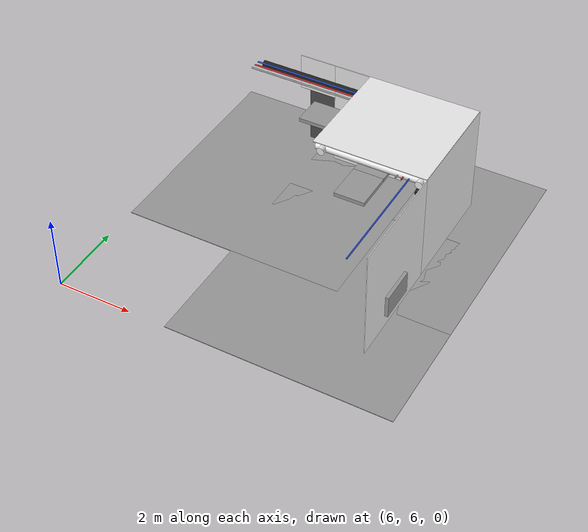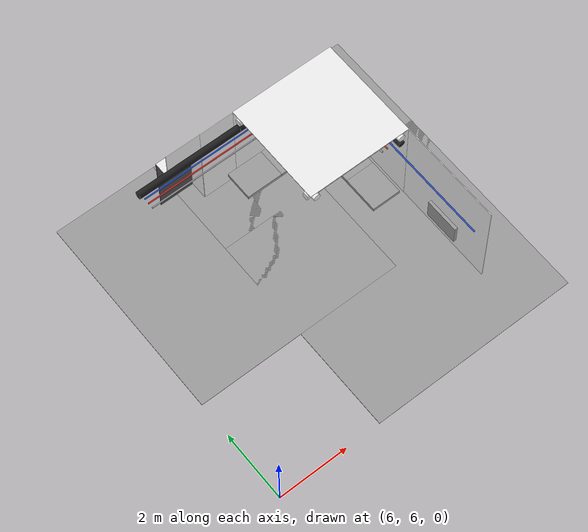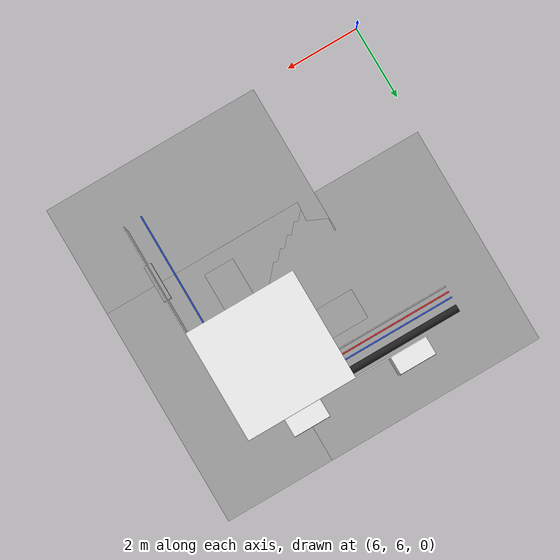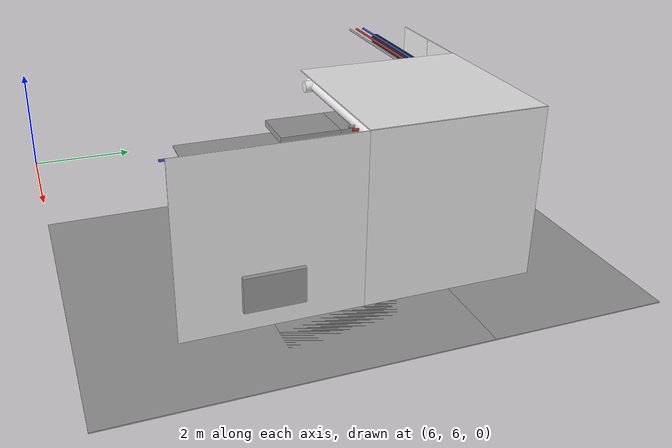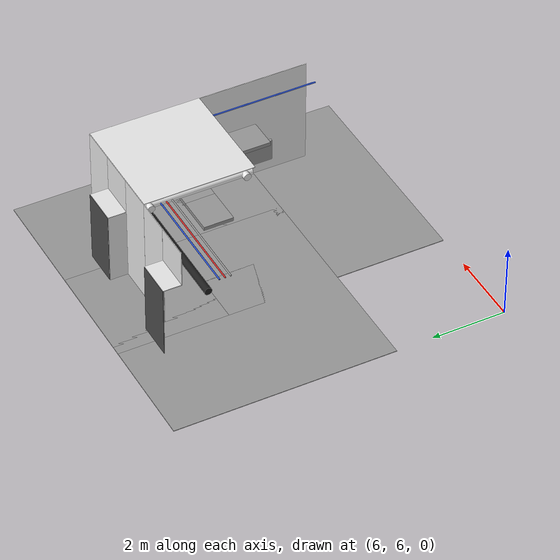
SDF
<sdf version="1.6">
 <world name="default">
  <model name="wall_right_4_3_0_1">
   <static>1</static>
   <pose>13.5 9.0 1.5 0.0 0.0 1.57</pose>
   <link name="link">
    <collision name="collision"><geometry><box><size>3.0 0.02 3.0</size></box></geometry></collision>
    <visual name="visual">
     <material>
      <script><name>Gazebo/White</name><uri>file://media/materials/scripts/gazebo.material</uri></script>
     </material>
     <geometry><box><size>3.0 0.02 3.0</size></box></geometry>
    </visual>
   </link>
  </model>
  <model name="ceiling_1_4_3_2_1">
   <pose>12.0 10.0 2.55 0.0 0.0 0.0</pose>
   <link name="link_1">
    <visual name="visual">
     <geometry><box><size>0.8 1 0.1</size></box></geometry>
     <material>
      <script><uri>file://media/materials/scripts/gazebo.material</uri><name>Gazebo/Grey</name></script>
     </material>
    </visual>
    <collision name="collision"><geometry><box><size>0.8 1 0.1</size></box></geometry></collision>
   </link>
   <static>1</static>
  </model>
  <model name="blue_pipe_right_4_3_0_1">
   <static>1</static>
   <pose>12.0 9.0 2.76 0.0 0.0 0.0</pose>
   <link name="link_0">
    <visual name="visual">
     <pose>1 0 0 1.57 0 0</pose>
     <geometry><cylinder><radius>0.02</radius><length>3.0</length></cylinder></geometry>
     <material>
      <script><uri>file://media/materials/scripts/gazebo.material</uri><name>Gazebo/Blue</name></script>
     </material>
    </visual>
    <collision name="collision">
     <pose>1 0 0 1.57 0 0</pose>
     <geometry><cylinder><radius>0.02</radius><length>3.0</length></cylinder></geometry>
    </collision>
   </link>
  </model>
  <model name="wall_bottom_4_3_0_1">
   <static>1</static>
   <pose>12.0 9.0 0.0 0.0 0.0 0.0</pose>
   <link name="link">
    <collision name="collision"><geometry><box><size>6.0 6.0 0.02</size></box></geometry></collision>
    <visual name="visual">
     <material>
      <script><name>Gazebo/Grey</name><uri>file://media/materials/scripts/gazebo.material</uri></script>
     </material>
     <geometry><box><size>6.0 6.0 0.02</size></box></geometry>
    </visual>
   </link>
  </model>
  <model name="panel_4_3_0_1">
   <static>1</static>
   <pose>13.5 9.0 0.66 0.0 0.0 0.0</pose>
   <link name="link">
    <collision name="collision"><geometry><box><size>0.2 1 0.6</size></box></geometry></collision>
    <visual name="visual">
     <material>
      <script><name>Gazebo/Grey</name><uri>file://media/materials/scripts/gazebo.material</uri></script>
     </material>
     <geometry><box><size>0.2 1 0.6</size></box></geometry>
    </visual>
   </link>
  </model>
  <model name="wall_right_4_4_0_3">
   <static>1</static>
   <pose>13.5 12.0 1.5 0.0 0.0 1.57</pose>
   <link name="link">
    <collision name="collision"><geometry><box><size>3.0 0.02 3.0</size></box></geometry></collision>
    <visual name="visual">
     <material>
      <script><name>Gazebo/White</name><uri>file://media/materials/scripts/gazebo.material</uri></script>
     </material>
     <geometry><box><size>3.0 0.02 3.0</size></box></geometry>
    </visual>
   </link>
  </model>
  <model name="wall_top_4_4_0_3">
   <static>1</static>
   <pose>12.0 12.0 3.0 1.57 0.0 0.0</pose>
   <link name="link">
    <collision name="collision"><geometry><box><size>3.0 0.02 3.0</size></box></geometry></collision>
    <visual name="visual">
     <material>
      <script><name>Gazebo/White</name><uri>file://media/materials/scripts/gazebo.material</uri></script>
     </material>
     <geometry><box><size>3.0 0.02 3.0</size></box></geometry>
    </visual>
   </link>
  </model>
  <model name="ceiling_1_4_4_0_3">
   <pose>12.0 11.0 2.55 0.0 0.0 0.0</pose>
   <link name="link_1">
    <visual name="visual">
     <geometry><box><size>0.8 1 0.1</size></box></geometry>
     <material>
      <script><uri>file://media/materials/scripts/gazebo.material</uri><name>Gazebo/Grey</name></script>
     </material>
    </visual>
    <collision name="collision"><geometry><box><size>0.8 1 0.1</size></box></geometry></collision>
   </link>
   <static>1</static>
  </model>
  <model name="ceiling_1_4_4_1_3">
   <pose>11.0 12.0 2.55 0.0 0.0 1.57</pose>
   <link name="link_1">
    <visual name="visual">
     <geometry><box><size>0.8 1 0.1</size></box></geometry>
     <material>
      <script><uri>file://media/materials/scripts/gazebo.material</uri><name>Gazebo/Grey</name></script>
     </material>
    </visual>
    <collision name="collision"><geometry><box><size>0.8 1 0.1</size></box></geometry></collision>
   </link>
   <static>1</static>
  </model>
  <model name="white_pipe_left_4_4_0_3">
   <static>1</static>
   <pose>12.0 12.0 2.76 0.0 0.0 0.0</pose>
   <link name="link_0">
    <visual name="visual">
     <pose>-1.3 0 0 1.57 0 0</pose>
     <geometry><cylinder><radius>0.1</radius><length>3.0</length></cylinder></geometry>
     <material>
      <script><uri>file://media/materials/scripts/gazebo.material</uri><name>Gazebo/White</name></script>
     </material>
    </visual>
    <collision name="collision">
     <pose>-1.3 0 0 1.57 0 0</pose>
     <geometry><cylinder><radius>0.1</radius><length>3.0</length></cylinder></geometry>
    </collision>
   </link>
  </model>
  <model name="white_pipe_right_4_4_0_3">
   <static>1</static>
   <pose>12.0 12.0 2.76 0.0 0.0 0.0</pose>
   <link name="link_0">
    <visual name="visual">
     <pose>1.3 0 0 1.57 0 0</pose>
     <geometry><cylinder><radius>0.1</radius><length>3.0</length></cylinder></geometry>
     <material>
      <script><uri>file://media/materials/scripts/gazebo.material</uri><name>Gazebo/White</name></script>
     </material>
    </visual>
    <collision name="collision">
     <pose>1.3 0 0 1.57 0 0</pose>
     <geometry><cylinder><radius>0.1</radius><length>3.0</length></cylinder></geometry>
    </collision>
   </link>
  </model>
  <model name="black_pipe_right_4_4_0_3">
   <static>1</static>
   <pose>12.0 12.0 2.76 0.0 0.0 0.0</pose>
   <link name="link_0">
    <visual name="visual">
     <pose>1.3 0 -0.25 1.57 0 0</pose>
     <geometry><cylinder><radius>0.1</radius><length>3.0</length></cylinder></geometry>
     <material>
      <script><uri>file://media/materials/scripts/gazebo.material</uri><name>Gazebo/Black</name></script>
     </material>
    </visual>
    <collision name="collision">
     <pose>1.3 0 -0.25 1.57 0 0</pose>
     <geometry><cylinder><radius>0.1</radius><length>3.0</length></cylinder></geometry>
    </collision>
   </link>
  </model>
  <model name="grey_pipe_right_4_4_0_3">
   <static>1</static>
   <pose>12.0 12.0 2.76 0.0 0.0 0.0</pose>
   <link name="link_0">
    <visual name="visual">
     <pose>0.7 0 0 1.57 0 0</pose>
     <geometry><cylinder><radius>0.02</radius><length>3.0</length></cylinder></geometry>
     <material>
      <script><uri>file://media/materials/scripts/gazebo.material</uri><name>Gazebo/Grey</name></script>
     </material>
    </visual>
    <collision name="collision">
     <pose>0.7 0 0 1.57 0 0</pose>
     <geometry><cylinder><radius>0.02</radius><length>3.0</length></cylinder></geometry>
    </collision>
   </link>
  </model>
  <model name="red_pipe_right_4_4_0_3">
   <static>1</static>
   <pose>12.0 12.0 2.76 0.0 0.0 0.0</pose>
   <link name="link_0">
    <visual name="visual">
     <pose>0.85 0 0 1.57 0 0</pose>
     <geometry><cylinder><radius>0.02</radius><length>3.0</length></cylinder></geometry>
     <material>
      <script><uri>file://media/materials/scripts/gazebo.material</uri><name>Gazebo/Red</name></script>
     </material>
    </visual>
    <collision name="collision">
     <pose>0.85 0 0 1.57 0 0</pose>
     <geometry><cylinder><radius>0.02</radius><length>3.0</length></cylinder></geometry>
    </collision>
   </link>
  </model>
  <model name="blue_pipe_right_4_4_0_3">
   <static>1</static>
   <pose>12.0 12.0 2.76 0.0 0.0 0.0</pose>
   <link name="link_0">
    <visual name="visual">
     <pose>1 0 0 1.57 0 0</pose>
     <geometry><cylinder><radius>0.02</radius><length>3.0</length></cylinder></geometry>
     <material>
      <script><uri>file://media/materials/scripts/gazebo.material</uri><name>Gazebo/Blue</name></script>
     </material>
    </visual>
    <collision name="collision">
     <pose>1 0 0 1.57 0 0</pose>
     <geometry><cylinder><radius>0.02</radius><length>3.0</length></cylinder></geometry>
    </collision>
   </link>
  </model>
  <model name="white_pipe_left_1_4_4_0_3">
   <static>1</static>
   <pose>12.0 12.0 2.76 0.0 0.0 1.57</pose>
   <link name="link_0">
    <visual name="visual">
     <pose>-1.3 0 0 1.57 0 0</pose>
     <geometry><cylinder><radius>0.1</radius><length>3.0</length></cylinder></geometry>
     <material>
      <script><uri>file://media/materials/scripts/gazebo.material</uri><name>Gazebo/White</name></script>
     </material>
    </visual>
    <collision name="collision">
     <pose>-1.3 0 0 1.57 0 0</pose>
     <geometry><cylinder><radius>0.1</radius><length>3.0</length></cylinder></geometry>
    </collision>
   </link>
  </model>
  <model name="white_pipe_right_1_4_4_0_3">
   <static>1</static>
   <pose>12.0 12.0 2.76 0.0 0.0 1.57</pose>
   <link name="link_0">
    <visual name="visual">
     <pose>1.3 0 0 1.57 0 0</pose>
     <geometry><cylinder><radius>0.1</radius><length>3.0</length></cylinder></geometry>
     <material>
      <script><uri>file://media/materials/scripts/gazebo.material</uri><name>Gazebo/White</name></script>
     </material>
    </visual>
    <collision name="collision">
     <pose>1.3 0 0 1.57 0 0</pose>
     <geometry><cylinder><radius>0.1</radius><length>3.0</length></cylinder></geometry>
    </collision>
   </link>
  </model>
  <model name="black_pipe_right_1_4_4_0_3">
   <static>1</static>
   <pose>12.0 12.0 2.76 0.0 0.0 1.57</pose>
   <link name="link_0">
    <visual name="visual">
     <pose>1.3 0 -0.25 1.57 0 0</pose>
     <geometry><cylinder><radius>0.1</radius><length>3.0</length></cylinder></geometry>
     <material>
      <script><uri>file://media/materials/scripts/gazebo.material</uri><name>Gazebo/Black</name></script>
     </material>
    </visual>
    <collision name="collision">
     <pose>1.3 0 -0.25 1.57 0 0</pose>
     <geometry><cylinder><radius>0.1</radius><length>3.0</length></cylinder></geometry>
    </collision>
   </link>
  </model>
  <model name="grey_pipe_right_1_4_4_0_3">
   <static>1</static>
   <pose>12.0 12.0 2.76 0.0 0.0 1.57</pose>
   <link name="link_0">
    <visual name="visual">
     <pose>0.7 0 0 1.57 0 0</pose>
     <geometry><cylinder><radius>0.02</radius><length>3.0</length></cylinder></geometry>
     <material>
      <script><uri>file://media/materials/scripts/gazebo.material</uri><name>Gazebo/Grey</name></script>
     </material>
    </visual>
    <collision name="collision">
     <pose>0.7 0 0 1.57 0 0</pose>
     <geometry><cylinder><radius>0.02</radius><length>3.0</length></cylinder></geometry>
    </collision>
   </link>
  </model>
  <model name="red_pipe_right_1_4_4_0_3">
   <static>1</static>
   <pose>12.0 12.0 2.76 0.0 0.0 1.57</pose>
   <link name="link_0">
    <visual name="visual">
     <pose>0.85 0 0 1.57 0 0</pose>
     <geometry><cylinder><radius>0.02</radius><length>3.0</length></cylinder></geometry>
     <material>
      <script><uri>file://media/materials/scripts/gazebo.material</uri><name>Gazebo/Red</name></script>
     </material>
    </visual>
    <collision name="collision">
     <pose>0.85 0 0 1.57 0 0</pose>
     <geometry><cylinder><radius>0.02</radius><length>3.0</length></cylinder></geometry>
    </collision>
   </link>
  </model>
  <model name="blue_pipe_right_1_4_4_0_3">
   <static>1</static>
   <pose>12.0 12.0 2.76 0.0 0.0 1.57</pose>
   <link name="link_0">
    <visual name="visual">
     <pose>1 0 0 1.57 0 0</pose>
     <geometry><cylinder><radius>0.02</radius><length>3.0</length></cylinder></geometry>
     <material>
      <script><uri>file://media/materials/scripts/gazebo.material</uri><name>Gazebo/Blue</name></script>
     </material>
    </visual>
    <collision name="collision">
     <pose>1 0 0 1.57 0 0</pose>
     <geometry><cylinder><radius>0.02</radius><length>3.0</length></cylinder></geometry>
    </collision>
   </link>
  </model>
  <model name="wall_front_front_left_4_4_0_3">
   <static>1</static>
   <pose>13.0 13.5 1.5 0.0 0.0 0.0</pose>
   <link name="link">
    <collision name="collision"><geometry><box><size>1.0 0.02 3.0</size></box></geometry></collision>
    <visual name="visual">
     <material>
      <script><name>Gazebo/White</name><uri>file://media/materials/scripts/gazebo.material</uri></script>
     </material>
     <geometry><box><size>1.0 0.02 3.0</size></box></geometry>
    </visual>
   </link>
  </model>
  <model name="wall_front_front_right_4_4_0_3">
   <static>1</static>
   <pose>11.0 13.5 1.5 0.0 0.0 0.0</pose>
   <link name="link">
    <collision name="collision"><geometry><box><size>1.0 0.02 3.0</size></box></geometry></collision>
    <visual name="visual">
     <material>
      <script><name>Gazebo/White</name><uri>file://media/materials/scripts/gazebo.material</uri></script>
     </material>
     <geometry><box><size>1.0 0.02 3.0</size></box></geometry>
    </visual>
   </link>
  </model>
  <model name="wall_front_front_up_4_4_0_3">
   <static>1</static>
   <pose>12.0 13.5 2.5 0.0 0.0 0.0</pose>
   <link name="link">
    <collision name="collision"><geometry><box><size>1.0 0.02 1.0</size></box></geometry></collision>
    <visual name="visual">
     <material>
      <script><name>Gazebo/White</name><uri>file://media/materials/scripts/gazebo.material</uri></script>
     </material>
     <geometry><box><size>1.0 0.02 1.0</size></box></geometry>
    </visual>
   </link>
  </model>
  <model name="wall_front_inside_back_4_4_0_3">
   <static>1</static>
   <pose>12.0 14.0 1.0 0.0 0.0 0.0</pose>
   <link name="link">
    <collision name="collision"><geometry><box><size>1 0.02 2</size></box></geometry></collision>
    <visual name="visual">
     <material>
      <script><name>Gazebo/DarkGrey</name><uri>file://media/materials/scripts/gazebo.material</uri></script>
     </material>
     <geometry><box><size>1 0.02 2</size></box></geometry>
    </visual>
   </link>
  </model>
  <model name="wall_front_inside_left_4_4_0_3">
   <static>1</static>
   <pose>11.5 13.75 1.0 0.0 0.0 1.57</pose>
   <link name="link">
    <collision name="collision"><geometry><box><size>0.5 0.02 2</size></box></geometry></collision>
    <visual name="visual">
     <material>
      <script><name>Gazebo/White</name><uri>file://media/materials/scripts/gazebo.material</uri></script>
     </material>
     <geometry><box><size>0.5 0.02 2</size></box></geometry>
    </visual>
   </link>
  </model>
  <model name="wall_front_inside_right_4_4_0_3">
   <static>1</static>
   <pose>12.5 13.75 1.0 0.0 0.0 1.57</pose>
   <link name="link">
    <collision name="collision"><geometry><box><size>0.5 0.02 2</size></box></geometry></collision>
    <visual name="visual">
     <material>
      <script><name>Gazebo/White</name><uri>file://media/materials/scripts/gazebo.material</uri></script>
     </material>
     <geometry><box><size>0.5 0.02 2</size></box></geometry>
    </visual>
   </link>
  </model>
  <model name="wall_front_inside_top_4_4_0_3">
   <static>1</static>
   <pose>12.0 13.75 2.0 1.57 0.0 0.0</pose>
   <link name="link">
    <collision name="collision"><geometry><box><size>1 0.02 0.5</size></box></geometry></collision>
    <visual name="visual">
     <material>
      <script><name>Gazebo/White</name><uri>file://media/materials/scripts/gazebo.material</uri></script>
     </material>
     <geometry><box><size>1 0.02 0.5</size></box></geometry>
    </visual>
   </link>
  </model>
  <model name="wall_bottom_4_4_0_3">
   <static>1</static>
   <pose>12.0 12.0 0.0 0.0 0.0 0.0</pose>
   <link name="link">
    <collision name="collision"><geometry><box><size>6.0 6.0 0.02</size></box></geometry></collision>
    <visual name="visual">
     <material>
      <script><name>Gazebo/Grey</name><uri>file://media/materials/scripts/gazebo.material</uri></script>
     </material>
     <geometry><box><size>6.0 6.0 0.02</size></box></geometry>
    </visual>
   </link>
  </model>
  <model name="ceiling_1_3_4_1_1">
   <pose>10.0 12.0 2.55 0.0 0.0 1.57</pose>
   <link name="link_1">
    <visual name="visual">
     <geometry><box><size>0.8 1 0.1</size></box></geometry>
     <material>
      <script><uri>file://media/materials/scripts/gazebo.material</uri><name>Gazebo/Grey</name></script>
     </material>
    </visual>
    <collision name="collision"><geometry><box><size>0.8 1 0.1</size></box></geometry></collision>
   </link>
   <static>1</static>
  </model>
  <model name="black_pipe_right_3_4_0_1">
   <static>1</static>
   <pose>9.0 12.0 2.76 0.0 0.0 1.57</pose>
   <link name="link_0">
    <visual name="visual">
     <pose>1.3 0 -0.25 1.57 0 0</pose>
     <geometry><cylinder><radius>0.1</radius><length>3.0</length></cylinder></geometry>
     <material>
      <script><uri>file://media/materials/scripts/gazebo.material</uri><name>Gazebo/Black</name></script>
     </material>
    </visual>
    <collision name="collision">
     <pose>1.3 0 -0.25 1.57 0 0</pose>
     <geometry><cylinder><radius>0.1</radius><length>3.0</length></cylinder></geometry>
    </collision>
   </link>
  </model>
  <model name="grey_pipe_right_3_4_0_1">
   <static>1</static>
   <pose>9.0 12.0 2.76 0.0 0.0 1.57</pose>
   <link name="link_0">
    <visual name="visual">
     <pose>0.7 0 0 1.57 0 0</pose>
     <geometry><cylinder><radius>0.02</radius><length>3.0</length></cylinder></geometry>
     <material>
      <script><uri>file://media/materials/scripts/gazebo.material</uri><name>Gazebo/Grey</name></script>
     </material>
    </visual>
    <collision name="collision">
     <pose>0.7 0 0 1.57 0 0</pose>
     <geometry><cylinder><radius>0.02</radius><length>3.0</length></cylinder></geometry>
    </collision>
   </link>
  </model>
  <model name="red_pipe_right_3_4_0_1">
   <static>1</static>
   <pose>9.0 12.0 2.76 0.0 0.0 1.57</pose>
   <link name="link_0">
    <visual name="visual">
     <pose>0.85 0 0 1.57 0 0</pose>
     <geometry><cylinder><radius>0.02</radius><length>3.0</length></cylinder></geometry>
     <material>
      <script><uri>file://media/materials/scripts/gazebo.material</uri><name>Gazebo/Red</name></script>
     </material>
    </visual>
    <collision name="collision">
     <pose>0.85 0 0 1.57 0 0</pose>
     <geometry><cylinder><radius>0.02</radius><length>3.0</length></cylinder></geometry>
    </collision>
   </link>
  </model>
  <model name="blue_pipe_right_3_4_0_1">
   <static>1</static>
   <pose>9.0 12.0 2.76 0.0 0.0 1.57</pose>
   <link name="link_0">
    <visual name="visual">
     <pose>1 0 0 1.57 0 0</pose>
     <geometry><cylinder><radius>0.02</radius><length>3.0</length></cylinder></geometry>
     <material>
      <script><uri>file://media/materials/scripts/gazebo.material</uri><name>Gazebo/Blue</name></script>
     </material>
    </visual>
    <collision name="collision">
     <pose>1 0 0 1.57 0 0</pose>
     <geometry><cylinder><radius>0.02</radius><length>3.0</length></cylinder></geometry>
    </collision>
   </link>
  </model>
  <model name="wall_right_front_right_3_4_0_1">
   <static>1</static>
   <pose>10.0 13.5 1.5 0.0 0.0 3.14</pose>
   <link name="link">
    <collision name="collision"><geometry><box><size>1.0 0.02 3.0</size></box></geometry></collision>
    <visual name="visual">
     <material>
      <script><name>Gazebo/White</name><uri>file://media/materials/scripts/gazebo.material</uri></script>
     </material>
     <geometry><box><size>1.0 0.02 3.0</size></box></geometry>
    </visual>
   </link>
  </model>
  <model name="wall_right_front_up_3_4_0_1">
   <static>1</static>
   <pose>9.0 13.5 2.5 0.0 0.0 3.14</pose>
   <link name="link">
    <collision name="collision"><geometry><box><size>1.0 0.02 1.0</size></box></geometry></collision>
    <visual name="visual">
     <material>
      <script><name>Gazebo/White</name><uri>file://media/materials/scripts/gazebo.material</uri></script>
     </material>
     <geometry><box><size>1.0 0.02 1.0</size></box></geometry>
    </visual>
   </link>
  </model>
  <model name="wall_right_inside_back_3_4_0_1">
   <static>1</static>
   <pose>9.0 14.0 1.0 0.0 0.0 3.14</pose>
   <link name="link">
    <collision name="collision"><geometry><box><size>1 0.02 2</size></box></geometry></collision>
    <visual name="visual">
     <material>
      <script><name>Gazebo/DarkGrey</name><uri>file://media/materials/scripts/gazebo.material</uri></script>
     </material>
     <geometry><box><size>1 0.02 2</size></box></geometry>
    </visual>
   </link>
  </model>
  <model name="wall_right_inside_right_3_4_0_1">
   <static>1</static>
   <pose>9.5 13.75 1.0 0.0 0.0 1.57</pose>
   <link name="link">
    <collision name="collision"><geometry><box><size>0.5 0.02 2</size></box></geometry></collision>
    <visual name="visual">
     <material>
      <script><name>Gazebo/White</name><uri>file://media/materials/scripts/gazebo.material</uri></script>
     </material>
     <geometry><box><size>0.5 0.02 2</size></box></geometry>
    </visual>
   </link>
  </model>
  <model name="wall_right_inside_top_3_4_0_1">
   <static>1</static>
   <pose>9.0 13.75 2.0 1.57 0.0 3.14</pose>
   <link name="link">
    <collision name="collision"><geometry><box><size>1 0.02 0.5</size></box></geometry></collision>
    <visual name="visual">
     <material>
      <script><name>Gazebo/White</name><uri>file://media/materials/scripts/gazebo.material</uri></script>
     </material>
     <geometry><box><size>1 0.02 0.5</size></box></geometry>
    </visual>
   </link>
  </model>
  <model name="wall_bottom_3_4_0_1">
   <static>1</static>
   <pose>9.0 12.0 0.0 0.0 0.0 1.57</pose>
   <link name="link">
    <collision name="collision"><geometry><box><size>6.0 6.0 0.02</size></box></geometry></collision>
    <visual name="visual">
     <material>
      <script><name>Gazebo/Grey</name><uri>file://media/materials/scripts/gazebo.material</uri></script>
     </material>
     <geometry><box><size>6.0 6.0 0.02</size></box></geometry>
    </visual>
   </link>
  </model>
 </world>
</sdf>
